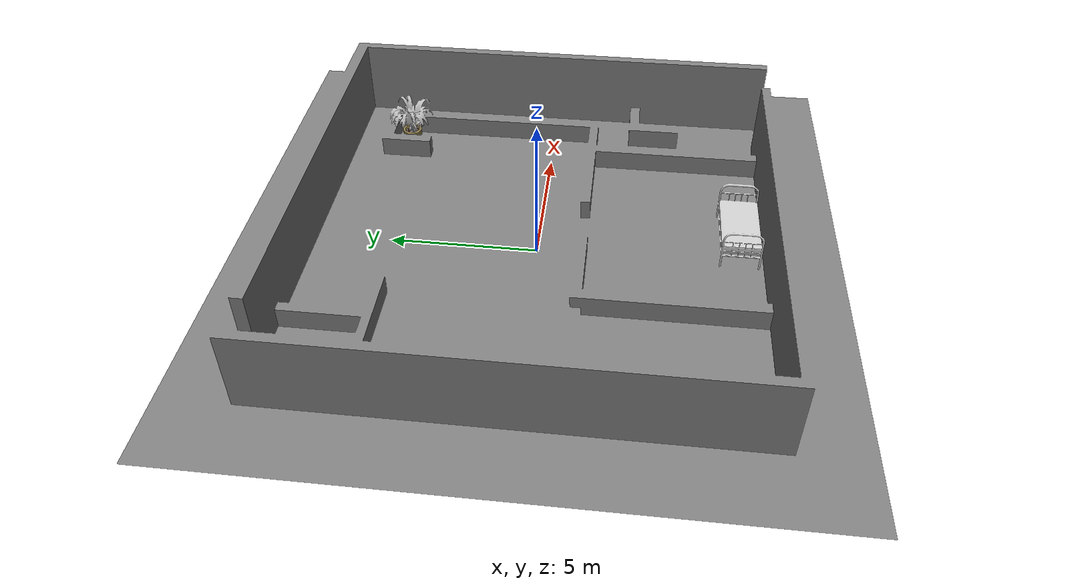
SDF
<?xml version="1.0" ?>
<sdf version="1.6">
  <model name="map1">
    <static>true</static> <!-- hoặc false nếu model có thể di chuyển -->
    <link name="link">
      <visual name="visual">
        <geometry>
          <mesh>
            <uri>model://testdae/meshes/map1.dae</uri>
          </mesh>
        </geometry>
      </visual>
      <collision name="collision">
        <geometry>
          <mesh>
            <uri>model://testdae/meshes/map1.dae</uri>
          </mesh>
        </geometry>
      </collision>
    </link>
  </model>
</sdf>
